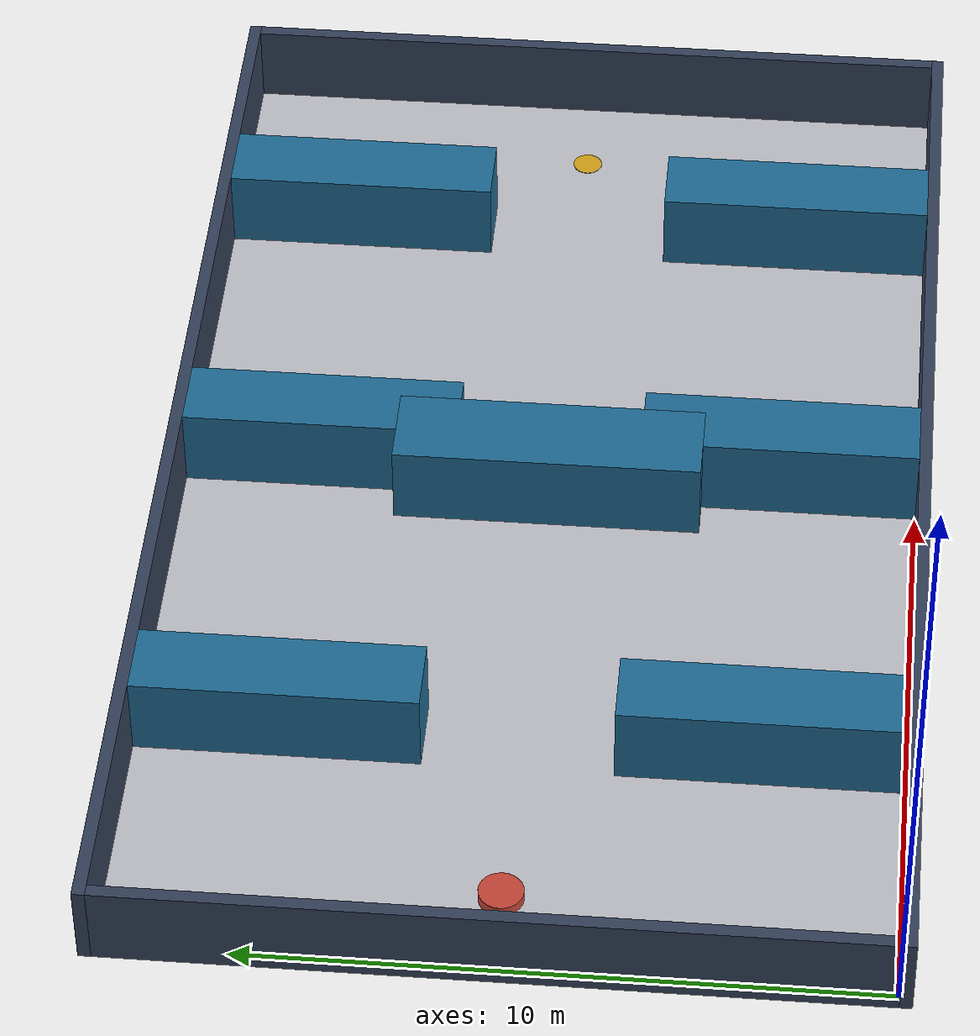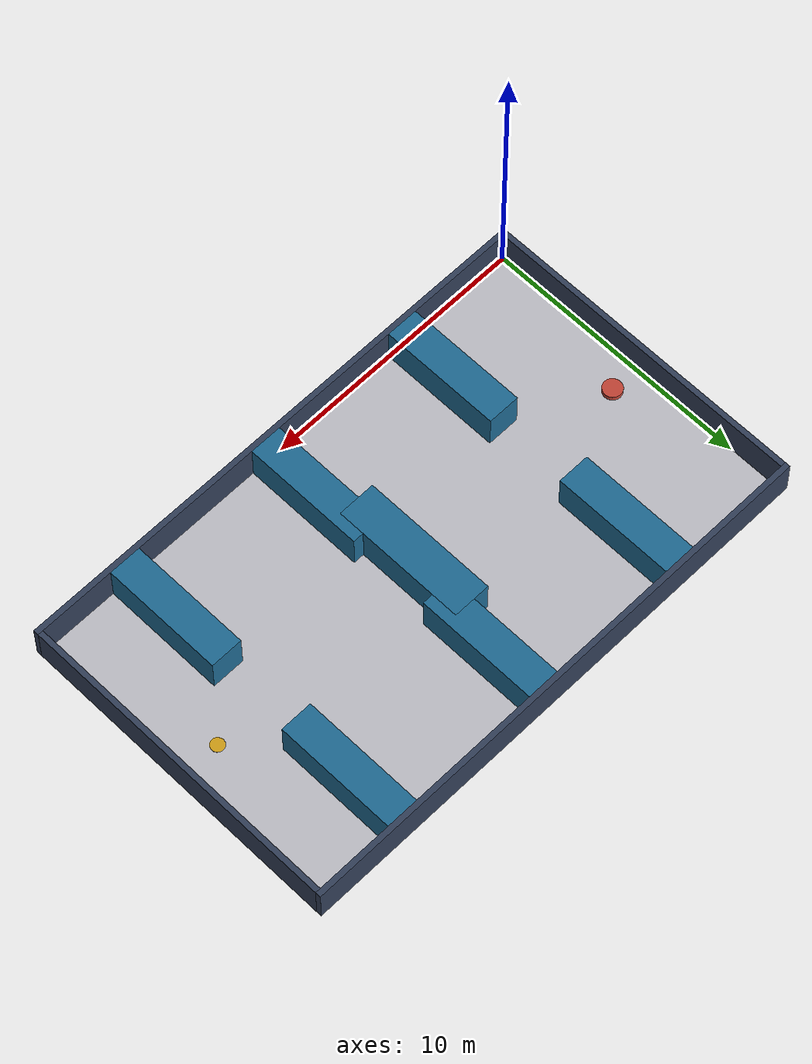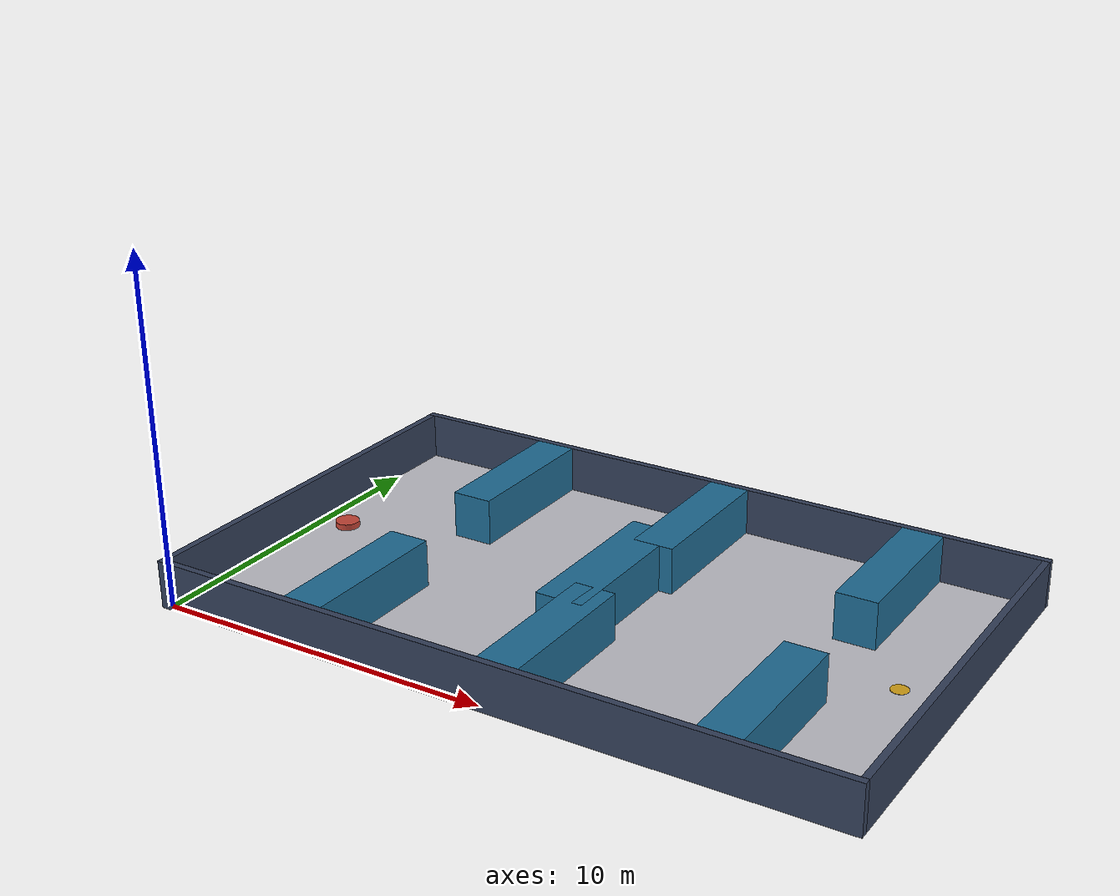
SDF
<?xml version="1.0" ?>
<sdf version="1.9">
  <world name="blocked_aisle">
    <physics name="1ms" type="ignored">
      <max_step_size>0.001</max_step_size>
      <real_time_factor>1.0</real_time_factor>
    </physics>
    <plugin filename="gz-sim-physics-system" name="gz::sim::systems::Physics"/>
    <plugin filename="gz-sim-scene-broadcaster-system" name="gz::sim::systems::SceneBroadcaster"/>
    <plugin filename="gz-sim-user-commands-system" name="gz::sim::systems::UserCommands"/>
    <plugin filename="gz-sim-contact-system" name="gz::sim::systems::Contact"/>
    <gravity>0 0 -9.8</gravity>
    <magnetic_field>6e-06 2.3e-05 -4.2e-05</magnetic_field>
    <scene>
      <ambient>0.6 0.6 0.65 1</ambient>
      <background>0.85 0.88 0.92 1</background>
    </scene>
    <model name="floor">
      <static>true</static>
      <pose>10.000 6.000 0 0 0 0</pose>
      <link name="link">
        <collision name="col"><geometry><box><size>20.000 12.000 0.05</size></box></geometry></collision>
        <visual name="vis">
          <geometry><box><size>20.000 12.000 0.05</size></box></geometry>
          <material><ambient>0.75 0.75 0.78 1</ambient></material>
        </visual>
      </link>
    </model>
    <model name="wall_0">
      <static>true</static>
      <pose>10.000 -0.100 0.700 0 0 0</pose>
      <link name="link">
        <collision name="col"><geometry><box><size>20.400 0.200 1.400</size></box></geometry></collision>
        <visual name="vis">
          <geometry><box><size>20.400 0.200 1.400</size></box></geometry>
          <material><ambient>0.2 0.25 0.35 1</ambient></material>
        </visual>
      </link>
    </model>
    <model name="wall_1">
      <static>true</static>
      <pose>10.000 12.100 0.700 0 0 0</pose>
      <link name="link">
        <collision name="col"><geometry><box><size>20.400 0.200 1.400</size></box></geometry></collision>
        <visual name="vis">
          <geometry><box><size>20.400 0.200 1.400</size></box></geometry>
          <material><ambient>0.2 0.25 0.35 1</ambient></material>
        </visual>
      </link>
    </model>
    <model name="wall_2">
      <static>true</static>
      <pose>-0.100 6.000 0.700 0 0 0</pose>
      <link name="link">
        <collision name="col"><geometry><box><size>0.200 12.000 1.400</size></box></geometry></collision>
        <visual name="vis">
          <geometry><box><size>0.200 12.000 1.400</size></box></geometry>
          <material><ambient>0.2 0.25 0.35 1</ambient></material>
        </visual>
      </link>
    </model>
    <model name="wall_3">
      <static>true</static>
      <pose>20.100 6.000 0.700 0 0 0</pose>
      <link name="link">
        <collision name="col"><geometry><box><size>0.200 12.000 1.400</size></box></geometry></collision>
        <visual name="vis">
          <geometry><box><size>0.200 12.000 1.400</size></box></geometry>
          <material><ambient>0.2 0.25 0.35 1</ambient></material>
        </visual>
      </link>
    </model>
    <model name="robot">
      <pose>1.200 6.000 0.350 0 0 0.0000</pose>
      <link name="base">
        <inertial>
          <mass>4.0</mass>
          <inertia><ixx>0.05</ixx><iyy>0.05</iyy><izz>0.08</izz><ixy>0</ixy><ixz>0</ixz><iyz>0</iyz></inertia>
        </inertial>
        <collision name="col"><geometry><cylinder><radius>0.350</radius><length>0.18</length></cylinder></geometry></collision>
        <visual name="vis">
          <geometry><cylinder><radius>0.350</radius><length>0.18</length></cylinder></geometry>
          <material><ambient>0.77 0.27 0.21 1</ambient></material>
        </visual>
        <sensor name="lidar" type="gpu_lidar">
          <pose>0 0 0.12 0 0 0</pose>
          <lidar>
            <scan><horizontal><samples>120</samples><min_angle>-1.57</min_angle><max_angle>1.57</max_angle></horizontal></scan>
            <range><min>0.08</min><max>12</max></range>
          </lidar>
          <always_on>1</always_on>
          <visualize>true</visualize>
          <update_rate>10</update_rate>
        </sensor>
      </link>
      <plugin filename="gz-sim-diff-drive-system" name="gz::sim::systems::DiffDrive">
        <frame_id>robot/base</frame_id>
        <child_frame_id>robot/base</child_frame_id>
        <topic>/cmd_vel</topic>
        <wheel_separation>0.300</wheel_separation>
        <wheel_radius>0.05</wheel_radius>
        <max_linear_acceleration>2</max_linear_acceleration>
        <min_linear_acceleration>-2</min_linear_acceleration>
      </plugin>
      <plugin filename="gz-sim-odometry-publisher-system" name="gz::sim::systems::OdometryPublisher">
        <odom_topic>/odom</odom_topic>
        <tf_topic>/tf</tf_topic>
      </plugin>
    </model>
    <model name="goal">
      <static>true</static>
      <pose>18.500 6.000 0.02 0 0 0</pose>
      <link name="link">
        <visual name="vis">
          <geometry><cylinder><radius>0.25</radius><length>0.02</length></cylinder></geometry>
          <material><ambient>0.83 0.63 0.09 1</ambient></material>
        </visual>
      </link>
    </model>
    <model name="shelf_0">
      <static>true</static>
      <pose>4.600 2.250 0.700 0 0 0</pose>
      <link name="link">
        <collision name="col"><geometry><box><size>1.200 4.500 1.400</size></box></geometry></collision>
        <visual name="vis">
          <geometry><box><size>1.200 4.500 1.400</size></box></geometry>
          <material><ambient>0.12 0.42 0.58 1</ambient></material>
        </visual>
      </link>
    </model>
    <model name="shelf_1">
      <static>true</static>
      <pose>4.600 9.750 0.700 0 0 0</pose>
      <link name="link">
        <collision name="col"><geometry><box><size>1.200 4.500 1.400</size></box></geometry></collision>
        <visual name="vis">
          <geometry><box><size>1.200 4.500 1.400</size></box></geometry>
          <material><ambient>0.12 0.42 0.58 1</ambient></material>
        </visual>
      </link>
    </model>
    <model name="shelf_2">
      <static>true</static>
      <pose>10.100 6.000 0.700 0 0 0</pose>
      <link name="link">
        <collision name="col"><geometry><box><size>1.400 5.000 1.400</size></box></geometry></collision>
        <visual name="vis">
          <geometry><box><size>1.400 5.000 1.400</size></box></geometry>
          <material><ambient>0.12 0.42 0.58 1</ambient></material>
        </visual>
      </link>
    </model>
    <model name="shelf_3">
      <static>true</static>
      <pose>10.600 2.250 0.700 0 0 0</pose>
      <link name="link">
        <collision name="col"><geometry><box><size>1.200 4.500 1.400</size></box></geometry></collision>
        <visual name="vis">
          <geometry><box><size>1.200 4.500 1.400</size></box></geometry>
          <material><ambient>0.12 0.42 0.58 1</ambient></material>
        </visual>
      </link>
    </model>
    <model name="shelf_4">
      <static>true</static>
      <pose>10.600 9.750 0.700 0 0 0</pose>
      <link name="link">
        <collision name="col"><geometry><box><size>1.200 4.500 1.400</size></box></geometry></collision>
        <visual name="vis">
          <geometry><box><size>1.200 4.500 1.400</size></box></geometry>
          <material><ambient>0.12 0.42 0.58 1</ambient></material>
        </visual>
      </link>
    </model>
    <model name="shelf_5">
      <static>true</static>
      <pose>16.600 2.250 0.700 0 0 0</pose>
      <link name="link">
        <collision name="col"><geometry><box><size>1.200 4.500 1.400</size></box></geometry></collision>
        <visual name="vis">
          <geometry><box><size>1.200 4.500 1.400</size></box></geometry>
          <material><ambient>0.12 0.42 0.58 1</ambient></material>
        </visual>
      </link>
    </model>
    <model name="shelf_6">
      <static>true</static>
      <pose>16.600 9.750 0.700 0 0 0</pose>
      <link name="link">
        <collision name="col"><geometry><box><size>1.200 4.500 1.400</size></box></geometry></collision>
        <visual name="vis">
          <geometry><box><size>1.200 4.500 1.400</size></box></geometry>
          <material><ambient>0.12 0.42 0.58 1</ambient></material>
        </visual>
      </link>
    </model>
  </world>
</sdf>
